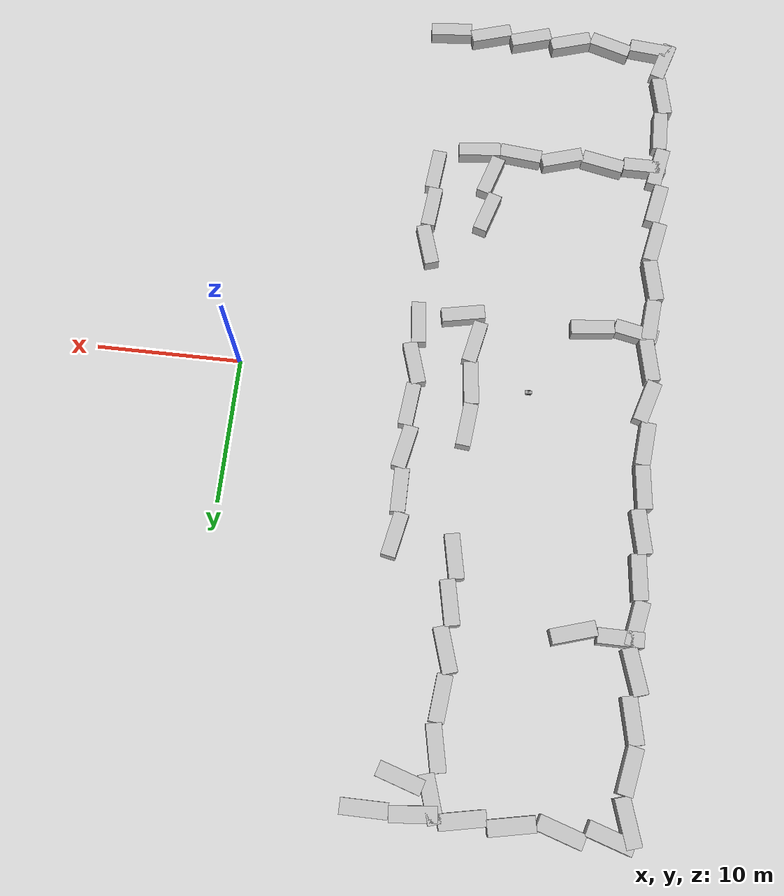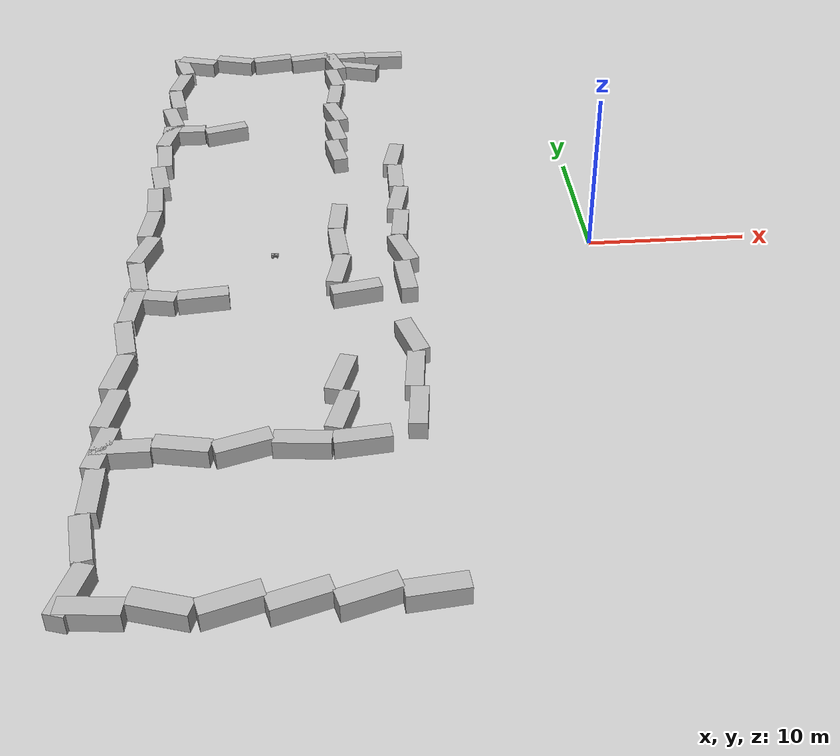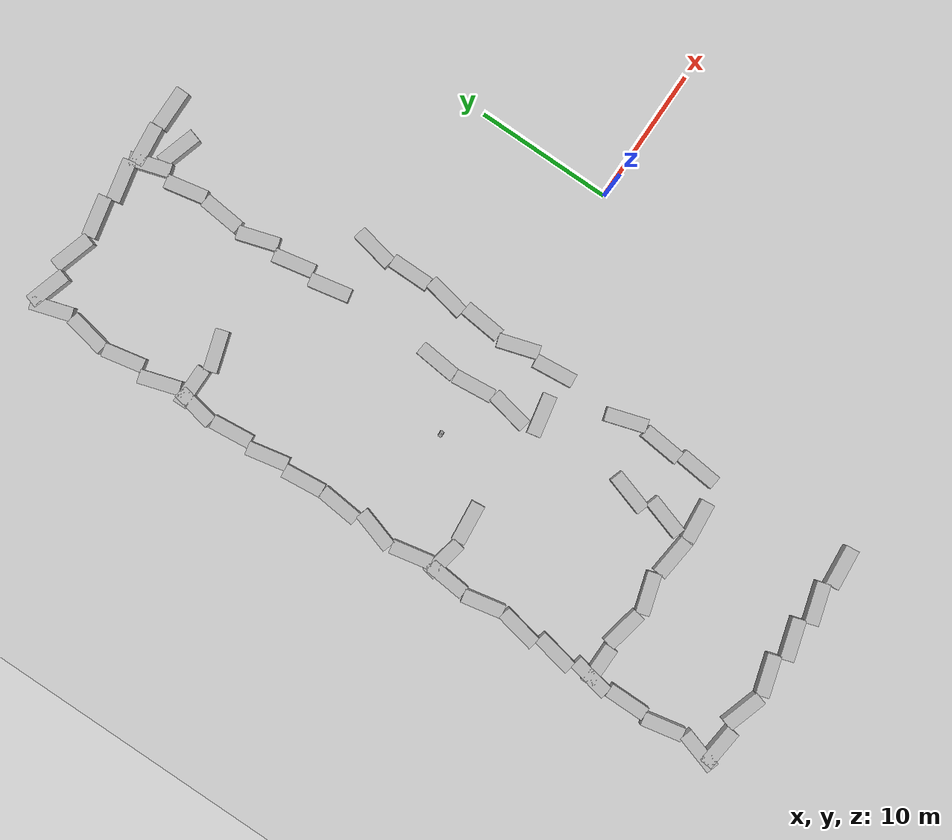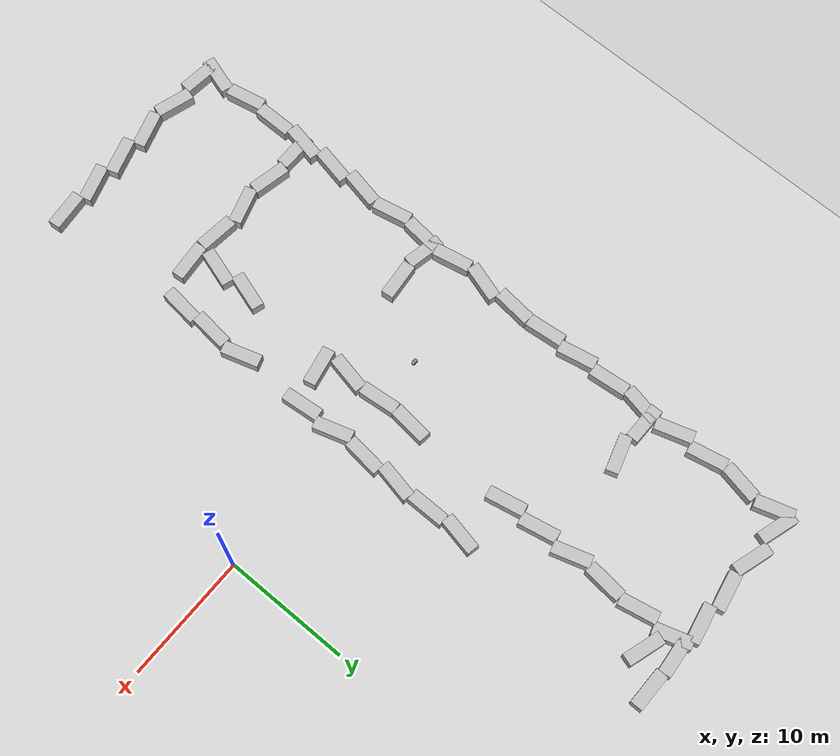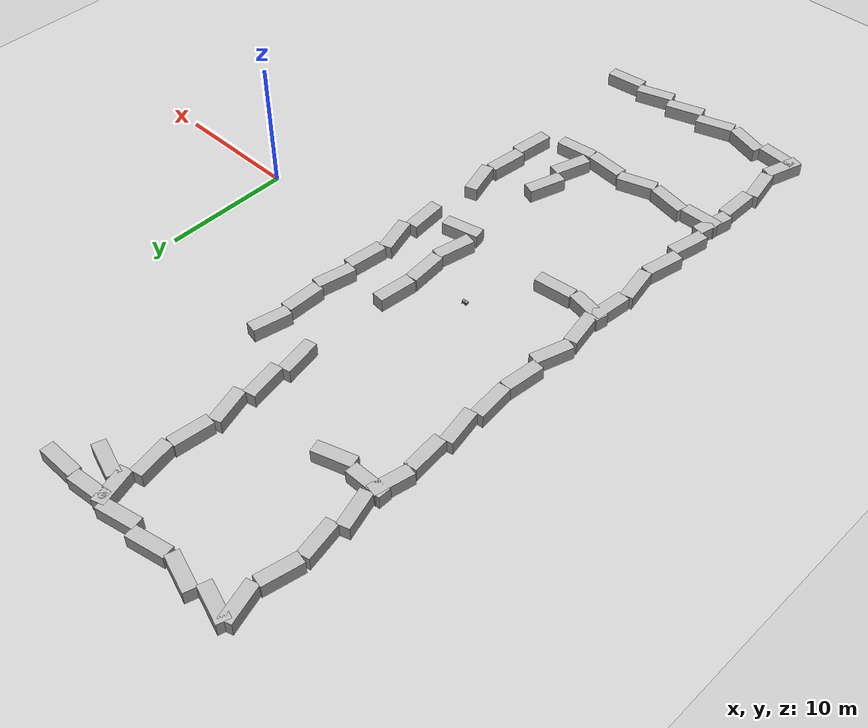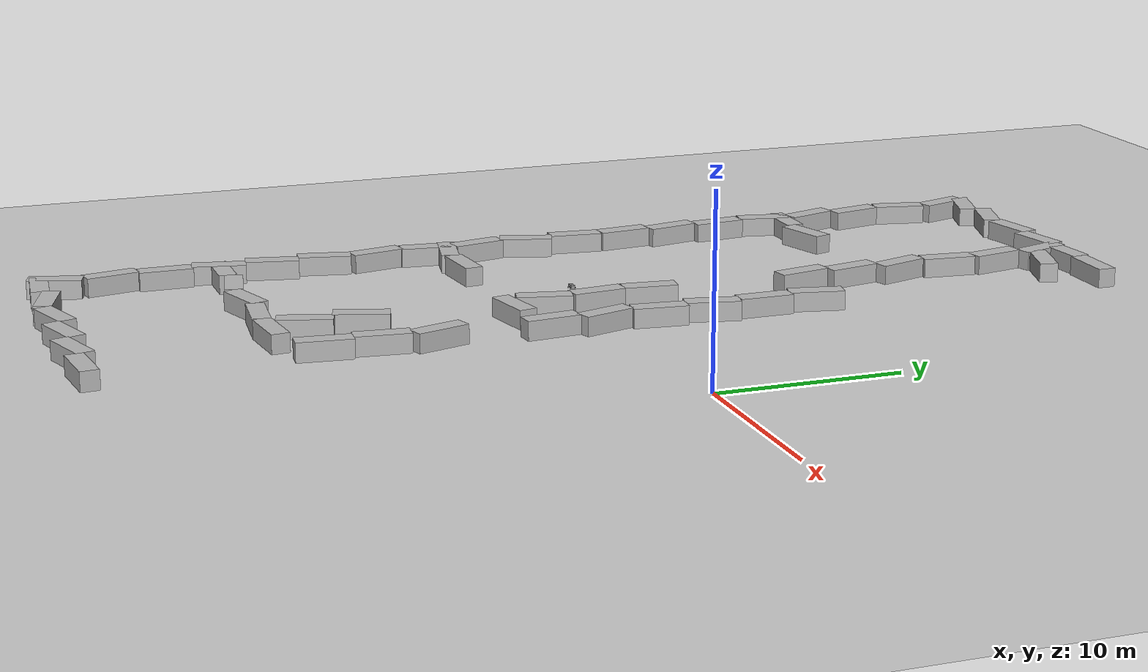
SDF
<sdf version="1.6">
 <world name="default">
  <model name="ground_plane">
   <static>1</static>
   <link name="link">
    <collision name="collision">
     <geometry><plane><normal>0 0 1</normal><size>100 100</size></plane></geometry>
     <surface>
      <contact><collide_bitmask>65535</collide_bitmask></contact>
      <friction><ode><mu>100</mu><mu2>50</mu2></ode></friction>
     </surface>
    </collision>
    <visual name="visual">
     <cast_shadows>0</cast_shadows>
     <geometry><plane><normal>0 0 1</normal><size>100 100</size></plane></geometry>
     <material>
      <script><uri>file://media/materials/scripts/gazebo.material</uri><name>Gazebo/Grey</name></script>
     </material>
    </visual>
   </link>
  </model>
  <model name="wall0">
   <static>1</static>
   <link name="chassis">
    <pose>0 0 1.5 0 -0 0</pose>
    <collision name="collision"><geometry><box><size>3 1 3</size></box></geometry></collision>
    <visual name="visual">
     <geometry><mesh><uri>model://brick_box_3x1x3/meshes/simple_box.dae</uri><scale>3 1 3</scale></mesh></geometry>
     <material>
      <script>
       <uri>model://brick_box_3x1x3/materials/scripts</uri>
       <uri>model://brick_box_3x1x3/materials/textures</uri>
       <name>BrickBox/Diffuse</name>
      </script>
     </material>
    </visual>
   </link>
   <pose>-27 -28 -2 0 0 -0.1</pose>
  </model>
  <model name="wall1">
   <static>1</static>
   <link name="chassis">
    <pose>0 0 1.5 0 -0 0</pose>
    <collision name="collision"><geometry><box><size>3 1 3</size></box></geometry></collision>
    <visual name="visual">
     <geometry><mesh><uri>model://brick_box_3x1x3/meshes/simple_box.dae</uri><scale>3 1 3</scale></mesh></geometry>
     <material>
      <script>
       <uri>model://brick_box_3x1x3/materials/scripts</uri>
       <uri>model://brick_box_3x1x3/materials/textures</uri>
       <name>BrickBox/Diffuse</name>
      </script>
     </material>
    </visual>
   </link>
   <pose>-27 28 -2 0 0 -0.3</pose>
  </model>
  <model name="wall2">
   <static>1</static>
   <link name="chassis">
    <pose>0 0 1.5 0 -0 0</pose>
    <collision name="collision"><geometry><box><size>3 1 3</size></box></geometry></collision>
    <visual name="visual">
     <geometry><mesh><uri>model://brick_box_3x1x3/meshes/simple_box.dae</uri><scale>3 1 3</scale></mesh></geometry>
     <material>
      <script>
       <uri>model://brick_box_3x1x3/materials/scripts</uri>
       <uri>model://brick_box_3x1x3/materials/textures</uri>
       <name>BrickBox/Diffuse</name>
      </script>
     </material>
    </visual>
   </link>
   <pose>-28 -27 -2 0 -0 1.2708</pose>
  </model>
  <model name="wall4">
   <static>1</static>
   <link name="chassis">
    <pose>0 0 1.5 0 -0 0</pose>
    <collision name="collision"><geometry><box><size>3 1 3</size></box></geometry></collision>
    <visual name="visual">
     <geometry><mesh><uri>model://brick_box_3x1x3/meshes/simple_box.dae</uri><scale>3 1 3</scale></mesh></geometry>
     <material>
      <script>
       <uri>model://brick_box_3x1x3/materials/scripts</uri>
       <uri>model://brick_box_3x1x3/materials/textures</uri>
       <name>BrickBox/Diffuse</name>
      </script>
     </material>
    </visual>
   </link>
   <pose>-24 -28 -2 0 0 -0.3</pose>
  </model>
  <model name="wall5">
   <static>1</static>
   <link name="chassis">
    <pose>0 0 1.5 0 -0 0</pose>
    <collision name="collision"><geometry><box><size>3 1 3</size></box></geometry></collision>
    <visual name="visual">
     <geometry><mesh><uri>model://brick_box_3x1x3/meshes/simple_box.dae</uri><scale>3 1 3</scale></mesh></geometry>
     <material>
      <script>
       <uri>model://brick_box_3x1x3/materials/scripts</uri>
       <uri>model://brick_box_3x1x3/materials/textures</uri>
       <name>BrickBox/Diffuse</name>
      </script>
     </material>
    </visual>
   </link>
   <pose>-24 28 -2 0 0 -0.3</pose>
  </model>
  <model name="wall6">
   <static>1</static>
   <link name="chassis">
    <pose>0 0 1.5 0 -0 0</pose>
    <collision name="collision"><geometry><box><size>3 1 3</size></box></geometry></collision>
    <visual name="visual">
     <geometry><mesh><uri>model://brick_box_3x1x3/meshes/simple_box.dae</uri><scale>3 1 3</scale></mesh></geometry>
     <material>
      <script>
       <uri>model://brick_box_3x1x3/materials/scripts</uri>
       <uri>model://brick_box_3x1x3/materials/textures</uri>
       <name>BrickBox/Diffuse</name>
      </script>
     </material>
    </visual>
   </link>
   <pose>-28 -24 -2 0 -0 1.7708</pose>
  </model>
  <model name="wall8">
   <static>1</static>
   <link name="chassis">
    <pose>0 0 1.5 0 -0 0</pose>
    <collision name="collision"><geometry><box><size>3 1 3</size></box></geometry></collision>
    <visual name="visual">
     <geometry><mesh><uri>model://brick_box_3x1x3/meshes/simple_box.dae</uri><scale>3 1 3</scale></mesh></geometry>
     <material>
      <script>
       <uri>model://brick_box_3x1x3/materials/scripts</uri>
       <uri>model://brick_box_3x1x3/materials/textures</uri>
       <name>BrickBox/Diffuse</name>
      </script>
     </material>
    </visual>
   </link>
   <pose>-21 -28 -2 0 -0 0.3</pose>
  </model>
  <model name="wall9">
   <static>1</static>
   <link name="chassis">
    <pose>0 0 1.5 0 -0 0</pose>
    <collision name="collision"><geometry><box><size>3 1 3</size></box></geometry></collision>
    <visual name="visual">
     <geometry><mesh><uri>model://brick_box_3x1x3/meshes/simple_box.dae</uri><scale>3 1 3</scale></mesh></geometry>
     <material>
      <script>
       <uri>model://brick_box_3x1x3/materials/scripts</uri>
       <uri>model://brick_box_3x1x3/materials/textures</uri>
       <name>BrickBox/Diffuse</name>
      </script>
     </material>
    </visual>
   </link>
   <pose>-21 28 -2 0 -0 0.2</pose>
  </model>
  <model name="wall10">
   <static>1</static>
   <link name="chassis">
    <pose>0 0 1.5 0 -0 0</pose>
    <collision name="collision"><geometry><box><size>3 1 3</size></box></geometry></collision>
    <visual name="visual">
     <geometry><mesh><uri>model://brick_box_3x1x3/meshes/simple_box.dae</uri><scale>3 1 3</scale></mesh></geometry>
     <material>
      <script>
       <uri>model://brick_box_3x1x3/materials/scripts</uri>
       <uri>model://brick_box_3x1x3/materials/textures</uri>
       <name>BrickBox/Diffuse</name>
      </script>
     </material>
    </visual>
   </link>
   <pose>-28 -21 -2 0 -0 1.5708</pose>
  </model>
  <model name="wall12">
   <static>1</static>
   <link name="chassis">
    <pose>0 0 1.5 0 -0 0</pose>
    <collision name="collision"><geometry><box><size>3 1 3</size></box></geometry></collision>
    <visual name="visual">
     <geometry><mesh><uri>model://brick_box_3x1x3/meshes/simple_box.dae</uri><scale>3 1 3</scale></mesh></geometry>
     <material>
      <script>
       <uri>model://brick_box_3x1x3/materials/scripts</uri>
       <uri>model://brick_box_3x1x3/materials/textures</uri>
       <name>BrickBox/Diffuse</name>
      </script>
     </material>
    </visual>
   </link>
   <pose>-18 -28 -2 0 -0 0.3</pose>
  </model>
  <model name="wall13">
   <static>1</static>
   <link name="chassis">
    <pose>0 0 1.5 0 -0 0</pose>
    <collision name="collision"><geometry><box><size>3 1 3</size></box></geometry></collision>
    <visual name="visual">
     <geometry><mesh><uri>model://brick_box_3x1x3/meshes/simple_box.dae</uri><scale>3 1 3</scale></mesh></geometry>
     <material>
      <script>
       <uri>model://brick_box_3x1x3/materials/scripts</uri>
       <uri>model://brick_box_3x1x3/materials/textures</uri>
       <name>BrickBox/Diffuse</name>
      </script>
     </material>
    </visual>
   </link>
   <pose>-18 28 -2 0 -0 0.2</pose>
  </model>
  <model name="wall14">
   <static>1</static>
   <link name="chassis">
    <pose>0 0 1.5 0 -0 0</pose>
    <collision name="collision"><geometry><box><size>3 1 3</size></box></geometry></collision>
    <visual name="visual">
     <geometry><mesh><uri>model://brick_box_3x1x3/meshes/simple_box.dae</uri><scale>3 1 3</scale></mesh></geometry>
     <material>
      <script>
       <uri>model://brick_box_3x1x3/materials/scripts</uri>
       <uri>model://brick_box_3x1x3/materials/textures</uri>
       <name>BrickBox/Diffuse</name>
      </script>
     </material>
    </visual>
   </link>
   <pose>-28 -18 -2 0 -0 1.3708</pose>
  </model>
  <model name="wall16">
   <static>1</static>
   <link name="chassis">
    <pose>0 0 1.5 0 -0 0</pose>
    <collision name="collision"><geometry><box><size>3 1 3</size></box></geometry></collision>
    <visual name="visual">
     <geometry><mesh><uri>model://brick_box_3x1x3/meshes/simple_box.dae</uri><scale>3 1 3</scale></mesh></geometry>
     <material>
      <script>
       <uri>model://brick_box_3x1x3/materials/scripts</uri>
       <uri>model://brick_box_3x1x3/materials/textures</uri>
       <name>BrickBox/Diffuse</name>
      </script>
     </material>
    </visual>
   </link>
   <pose>-15 -28 -2 0 -0 0.3</pose>
  </model>
  <model name="wall17">
   <static>1</static>
   <link name="chassis">
    <pose>0 0 1.5 0 -0 0</pose>
    <collision name="collision"><geometry><box><size>3 1 3</size></box></geometry></collision>
    <visual name="visual">
     <geometry><mesh><uri>model://brick_box_3x1x3/meshes/simple_box.dae</uri><scale>3 1 3</scale></mesh></geometry>
     <material>
      <script>
       <uri>model://brick_box_3x1x3/materials/scripts</uri>
       <uri>model://brick_box_3x1x3/materials/textures</uri>
       <name>BrickBox/Diffuse</name>
      </script>
     </material>
    </visual>
   </link>
   <pose>-15 28 -2 0 -0 0.1</pose>
  </model>
  <model name="wall18">
   <static>1</static>
   <link name="chassis">
    <pose>0 0 1.5 0 -0 0</pose>
    <collision name="collision"><geometry><box><size>3 1 3</size></box></geometry></collision>
    <visual name="visual">
     <geometry><mesh><uri>model://brick_box_3x1x3/meshes/simple_box.dae</uri><scale>3 1 3</scale></mesh></geometry>
     <material>
      <script>
       <uri>model://brick_box_3x1x3/materials/scripts</uri>
       <uri>model://brick_box_3x1x3/materials/textures</uri>
       <name>BrickBox/Diffuse</name>
      </script>
     </material>
    </visual>
   </link>
   <pose>-28 -15 -2 0 -0 1.3708</pose>
  </model>
  <model name="wall20">
   <static>1</static>
   <link name="chassis">
    <pose>0 0 1.5 0 -0 0</pose>
    <collision name="collision"><geometry><box><size>3 1 3</size></box></geometry></collision>
    <visual name="visual">
     <geometry><mesh><uri>model://brick_box_3x1x3/meshes/simple_box.dae</uri><scale>3 1 3</scale></mesh></geometry>
     <material>
      <script>
       <uri>model://brick_box_3x1x3/materials/scripts</uri>
       <uri>model://brick_box_3x1x3/materials/textures</uri>
       <name>BrickBox/Diffuse</name>
      </script>
     </material>
    </visual>
   </link>
   <pose>-12 -28 -2 0 -0 0.1</pose>
  </model>
  <model name="wall21">
   <static>1</static>
   <link name="chassis">
    <pose>0 0 1.5 0 -0 0</pose>
    <collision name="collision"><geometry><box><size>3 1 3</size></box></geometry></collision>
    <visual name="visual">
     <geometry><mesh><uri>model://brick_box_3x1x3/meshes/simple_box.dae</uri><scale>3 1 3</scale></mesh></geometry>
     <material>
      <script>
       <uri>model://brick_box_3x1x3/materials/scripts</uri>
       <uri>model://brick_box_3x1x3/materials/textures</uri>
       <name>BrickBox/Diffuse</name>
      </script>
     </material>
    </visual>
   </link>
   <pose>-12 28 -2 0 -0 0</pose>
  </model>
  <model name="wall22">
   <static>1</static>
   <link name="chassis">
    <pose>0 0 1.5 0 -0 0</pose>
    <collision name="collision"><geometry><box><size>3 1 3</size></box></geometry></collision>
    <visual name="visual">
     <geometry><mesh><uri>model://brick_box_3x1x3/meshes/simple_box.dae</uri><scale>3 1 3</scale></mesh></geometry>
     <material>
      <script>
       <uri>model://brick_box_3x1x3/materials/scripts</uri>
       <uri>model://brick_box_3x1x3/materials/textures</uri>
       <name>BrickBox/Diffuse</name>
      </script>
     </material>
    </visual>
   </link>
   <pose>-28 -12 -2 0 -0 1.3708</pose>
  </model>
  <model name="wall26">
   <static>1</static>
   <link name="chassis">
    <pose>0 0 1.5 0 -0 0</pose>
    <collision name="collision"><geometry><box><size>3 1 3</size></box></geometry></collision>
    <visual name="visual">
     <geometry><mesh><uri>model://brick_box_3x1x3/meshes/simple_box.dae</uri><scale>3 1 3</scale></mesh></geometry>
     <material>
      <script>
       <uri>model://brick_box_3x1x3/materials/scripts</uri>
       <uri>model://brick_box_3x1x3/materials/textures</uri>
       <name>BrickBox/Diffuse</name>
      </script>
     </material>
    </visual>
   </link>
   <pose>-28 -9 -2 0 -0 1.7708</pose>
  </model>
  <model name="wall30">
   <static>1</static>
   <link name="chassis">
    <pose>0 0 1.5 0 -0 0</pose>
    <collision name="collision"><geometry><box><size>3 1 3</size></box></geometry></collision>
    <visual name="visual">
     <geometry><mesh><uri>model://brick_box_3x1x3/meshes/simple_box.dae</uri><scale>3 1 3</scale></mesh></geometry>
     <material>
      <script>
       <uri>model://brick_box_3x1x3/materials/scripts</uri>
       <uri>model://brick_box_3x1x3/materials/textures</uri>
       <name>BrickBox/Diffuse</name>
      </script>
     </material>
    </visual>
   </link>
   <pose>-28 -6 -2 0 -0 1.4708</pose>
  </model>
  <model name="wall34">
   <static>1</static>
   <link name="chassis">
    <pose>0 0 1.5 0 -0 0</pose>
    <collision name="collision"><geometry><box><size>3 1 3</size></box></geometry></collision>
    <visual name="visual">
     <geometry><mesh><uri>model://brick_box_3x1x3/meshes/simple_box.dae</uri><scale>3 1 3</scale></mesh></geometry>
     <material>
      <script>
       <uri>model://brick_box_3x1x3/materials/scripts</uri>
       <uri>model://brick_box_3x1x3/materials/textures</uri>
       <name>BrickBox/Diffuse</name>
      </script>
     </material>
    </visual>
   </link>
   <pose>-28 -3 -2 0 -0 1.7708</pose>
  </model>
  <model name="wall38">
   <static>1</static>
   <link name="chassis">
    <pose>0 0 1.5 0 -0 0</pose>
    <collision name="collision"><geometry><box><size>3 1 3</size></box></geometry></collision>
    <visual name="visual">
     <geometry><mesh><uri>model://brick_box_3x1x3/meshes/simple_box.dae</uri><scale>3 1 3</scale></mesh></geometry>
     <material>
      <script>
       <uri>model://brick_box_3x1x3/materials/scripts</uri>
       <uri>model://brick_box_3x1x3/materials/textures</uri>
       <name>BrickBox/Diffuse</name>
      </script>
     </material>
    </visual>
   </link>
   <pose>-28 0 -2 0 -0 1.2708</pose>
  </model>
  <model name="wall42">
   <static>1</static>
   <link name="chassis">
    <pose>0 0 1.5 0 -0 0</pose>
    <collision name="collision"><geometry><box><size>3 1 3</size></box></geometry></collision>
    <visual name="visual">
     <geometry><mesh><uri>model://brick_box_3x1x3/meshes/simple_box.dae</uri><scale>3 1 3</scale></mesh></geometry>
     <material>
      <script>
       <uri>model://brick_box_3x1x3/materials/scripts</uri>
       <uri>model://brick_box_3x1x3/materials/textures</uri>
       <name>BrickBox/Diffuse</name>
      </script>
     </material>
    </visual>
   </link>
   <pose>-28 3 -2 0 -0 1.4708</pose>
  </model>
  <model name="wall46">
   <static>1</static>
   <link name="chassis">
    <pose>0 0 1.5 0 -0 0</pose>
    <collision name="collision"><geometry><box><size>3 1 3</size></box></geometry></collision>
    <visual name="visual">
     <geometry><mesh><uri>model://brick_box_3x1x3/meshes/simple_box.dae</uri><scale>3 1 3</scale></mesh></geometry>
     <material>
      <script>
       <uri>model://brick_box_3x1x3/materials/scripts</uri>
       <uri>model://brick_box_3x1x3/materials/textures</uri>
       <name>BrickBox/Diffuse</name>
      </script>
     </material>
    </visual>
   </link>
   <pose>-28 6 -2 0 -0 1.6708</pose>
  </model>
  <model name="wall50">
   <static>1</static>
   <link name="chassis">
    <pose>0 0 1.5 0 -0 0</pose>
    <collision name="collision"><geometry><box><size>3 1 3</size></box></geometry></collision>
    <visual name="visual">
     <geometry><mesh><uri>model://brick_box_3x1x3/meshes/simple_box.dae</uri><scale>3 1 3</scale></mesh></geometry>
     <material>
      <script>
       <uri>model://brick_box_3x1x3/materials/scripts</uri>
       <uri>model://brick_box_3x1x3/materials/textures</uri>
       <name>BrickBox/Diffuse</name>
      </script>
     </material>
    </visual>
   </link>
   <pose>-28 9 -2 0 -0 1.7708</pose>
  </model>
  <model name="wall54">
   <static>1</static>
   <link name="chassis">
    <pose>0 0 1.5 0 -0 0</pose>
    <collision name="collision"><geometry><box><size>3 1 3</size></box></geometry></collision>
    <visual name="visual">
     <geometry><mesh><uri>model://brick_box_3x1x3/meshes/simple_box.dae</uri><scale>3 1 3</scale></mesh></geometry>
     <material>
      <script>
       <uri>model://brick_box_3x1x3/materials/scripts</uri>
       <uri>model://brick_box_3x1x3/materials/textures</uri>
       <name>BrickBox/Diffuse</name>
      </script>
     </material>
    </visual>
   </link>
   <pose>-28 12 -2 0 -0 1.6708</pose>
  </model>
  <model name="wall58">
   <static>1</static>
   <link name="chassis">
    <pose>0 0 1.5 0 -0 0</pose>
    <collision name="collision"><geometry><box><size>3 1 3</size></box></geometry></collision>
    <visual name="visual">
     <geometry><mesh><uri>model://brick_box_3x1x3/meshes/simple_box.dae</uri><scale>3 1 3</scale></mesh></geometry>
     <material>
      <script>
       <uri>model://brick_box_3x1x3/materials/scripts</uri>
       <uri>model://brick_box_3x1x3/materials/textures</uri>
       <name>BrickBox/Diffuse</name>
      </script>
     </material>
    </visual>
   </link>
   <pose>-28 15 -2 0 -0 1.3708</pose>
  </model>
  <model name="wall62">
   <static>1</static>
   <link name="chassis">
    <pose>0 0 1.5 0 -0 0</pose>
    <collision name="collision"><geometry><box><size>3 1 3</size></box></geometry></collision>
    <visual name="visual">
     <geometry><mesh><uri>model://brick_box_3x1x3/meshes/simple_box.dae</uri><scale>3 1 3</scale></mesh></geometry>
     <material>
      <script>
       <uri>model://brick_box_3x1x3/materials/scripts</uri>
       <uri>model://brick_box_3x1x3/materials/textures</uri>
       <name>BrickBox/Diffuse</name>
      </script>
     </material>
    </visual>
   </link>
   <pose>-28 18 -2 0 -0 1.8708</pose>
  </model>
  <model name="wall66">
   <static>1</static>
   <link name="chassis">
    <pose>0 0 1.5 0 -0 0</pose>
    <collision name="collision"><geometry><box><size>3 1 3</size></box></geometry></collision>
    <visual name="visual">
     <geometry><mesh><uri>model://brick_box_3x1x3/meshes/simple_box.dae</uri><scale>3 1 3</scale></mesh></geometry>
     <material>
      <script>
       <uri>model://brick_box_3x1x3/materials/scripts</uri>
       <uri>model://brick_box_3x1x3/materials/textures</uri>
       <name>BrickBox/Diffuse</name>
      </script>
     </material>
    </visual>
   </link>
   <pose>-28 21 -2 0 -0 1.7708</pose>
  </model>
  <model name="wall70">
   <static>1</static>
   <link name="chassis">
    <pose>0 0 1.5 0 -0 0</pose>
    <collision name="collision"><geometry><box><size>3 1 3</size></box></geometry></collision>
    <visual name="visual">
     <geometry><mesh><uri>model://brick_box_3x1x3/meshes/simple_box.dae</uri><scale>3 1 3</scale></mesh></geometry>
     <material>
      <script>
       <uri>model://brick_box_3x1x3/materials/scripts</uri>
       <uri>model://brick_box_3x1x3/materials/textures</uri>
       <name>BrickBox/Diffuse</name>
      </script>
     </material>
    </visual>
   </link>
   <pose>-28 24 -2 0 -0 1.3708</pose>
  </model>
  <model name="wall74">
   <static>1</static>
   <link name="chassis">
    <pose>0 0 1.5 0 -0 0</pose>
    <collision name="collision"><geometry><box><size>3 1 3</size></box></geometry></collision>
    <visual name="visual">
     <geometry><mesh><uri>model://brick_box_3x1x3/meshes/simple_box.dae</uri><scale>3 1 3</scale></mesh></geometry>
     <material>
      <script>
       <uri>model://brick_box_3x1x3/materials/scripts</uri>
       <uri>model://brick_box_3x1x3/materials/textures</uri>
       <name>BrickBox/Diffuse</name>
      </script>
     </material>
    </visual>
   </link>
   <pose>-28 27 -2 0 -0 1.8708</pose>
  </model>
  <model name="wall93">
   <static>1</static>
   <link name="chassis">
    <pose>0 0 1.5 0 -0 0</pose>
    <collision name="collision"><geometry><box><size>3 1 3</size></box></geometry></collision>
    <visual name="visual">
     <geometry><mesh><uri>model://brick_box_3x1x3/meshes/simple_box.dae</uri><scale>3 1 3</scale></mesh></geometry>
     <material>
      <script>
       <uri>model://brick_box_3x1x3/materials/scripts</uri>
       <uri>model://brick_box_3x1x3/materials/textures</uri>
       <name>BrickBox/Diffuse</name>
      </script>
     </material>
    </visual>
   </link>
   <pose>-27 -18 -2 0 -0 0</pose>
  </model>
  <model name="wall94">
   <static>1</static>
   <link name="chassis">
    <pose>0 0 1.5 0 -0 0</pose>
    <collision name="collision"><geometry><box><size>3 1 3</size></box></geometry></collision>
    <visual name="visual">
     <geometry><mesh><uri>model://brick_box_3x1x3/meshes/simple_box.dae</uri><scale>3 1 3</scale></mesh></geometry>
     <material>
      <script>
       <uri>model://brick_box_3x1x3/materials/scripts</uri>
       <uri>model://brick_box_3x1x3/materials/textures</uri>
       <name>BrickBox/Diffuse</name>
      </script>
     </material>
    </visual>
   </link>
   <pose>-24 -18 -2 0 0 -0.2</pose>
  </model>
  <model name="wall95">
   <static>1</static>
   <link name="chassis">
    <pose>0 0 1.5 0 -0 0</pose>
    <collision name="collision"><geometry><box><size>3 1 3</size></box></geometry></collision>
    <visual name="visual">
     <geometry><mesh><uri>model://brick_box_3x1x3/meshes/simple_box.dae</uri><scale>3 1 3</scale></mesh></geometry>
     <material>
      <script>
       <uri>model://brick_box_3x1x3/materials/scripts</uri>
       <uri>model://brick_box_3x1x3/materials/textures</uri>
       <name>BrickBox/Diffuse</name>
      </script>
     </material>
    </visual>
   </link>
   <pose>-21 -18 -2 0 -0 0.3</pose>
  </model>
  <model name="wall96">
   <static>1</static>
   <link name="chassis">
    <pose>0 0 1.5 0 -0 0</pose>
    <collision name="collision"><geometry><box><size>3 1 3</size></box></geometry></collision>
    <visual name="visual">
     <geometry><mesh><uri>model://brick_box_3x1x3/meshes/simple_box.dae</uri><scale>3 1 3</scale></mesh></geometry>
     <material>
      <script>
       <uri>model://brick_box_3x1x3/materials/scripts</uri>
       <uri>model://brick_box_3x1x3/materials/textures</uri>
       <name>BrickBox/Diffuse</name>
      </script>
     </material>
    </visual>
   </link>
   <pose>-18 -18 -2 0 0 -0.1</pose>
  </model>
  <model name="wall97">
   <static>1</static>
   <link name="chassis">
    <pose>0 0 1.5 0 -0 0</pose>
    <collision name="collision"><geometry><box><size>3 1 3</size></box></geometry></collision>
    <visual name="visual">
     <geometry><mesh><uri>model://brick_box_3x1x3/meshes/simple_box.dae</uri><scale>3 1 3</scale></mesh></geometry>
     <material>
      <script>
       <uri>model://brick_box_3x1x3/materials/scripts</uri>
       <uri>model://brick_box_3x1x3/materials/textures</uri>
       <name>BrickBox/Diffuse</name>
      </script>
     </material>
    </visual>
   </link>
   <pose>-15 -18 -2 0 -0 0.1</pose>
  </model>
  <model name="wall106">
   <static>1</static>
   <link name="chassis">
    <pose>0 0 1.5 0 -0 0</pose>
    <collision name="collision"><geometry><box><size>3 1 3</size></box></geometry></collision>
    <visual name="visual">
     <geometry><mesh><uri>model://brick_box_3x1x3/meshes/simple_box.dae</uri><scale>3 1 3</scale></mesh></geometry>
     <material>
      <script>
       <uri>model://brick_box_3x1x3/materials/scripts</uri>
       <uri>model://brick_box_3x1x3/materials/textures</uri>
       <name>BrickBox/Diffuse</name>
      </script>
     </material>
    </visual>
   </link>
   <pose>-12 -16 -2 0 -0 1.4708</pose>
  </model>
  <model name="wall107">
   <static>1</static>
   <link name="chassis">
    <pose>0 0 1.5 0 -0 0</pose>
    <collision name="collision"><geometry><box><size>3 1 3</size></box></geometry></collision>
    <visual name="visual">
     <geometry><mesh><uri>model://brick_box_3x1x3/meshes/simple_box.dae</uri><scale>3 1 3</scale></mesh></geometry>
     <material>
      <script>
       <uri>model://brick_box_3x1x3/materials/scripts</uri>
       <uri>model://brick_box_3x1x3/materials/textures</uri>
       <name>BrickBox/Diffuse</name>
      </script>
     </material>
    </visual>
   </link>
   <pose>-12 -13 -2 0 -0 1.4708</pose>
  </model>
  <model name="wall108">
   <static>1</static>
   <link name="chassis">
    <pose>0 0 1.5 0 -0 0</pose>
    <collision name="collision"><geometry><box><size>3 1 3</size></box></geometry></collision>
    <visual name="visual">
     <geometry><mesh><uri>model://brick_box_3x1x3/meshes/simple_box.dae</uri><scale>3 1 3</scale></mesh></geometry>
     <material>
      <script>
       <uri>model://brick_box_3x1x3/materials/scripts</uri>
       <uri>model://brick_box_3x1x3/materials/textures</uri>
       <name>BrickBox/Diffuse</name>
      </script>
     </material>
    </visual>
   </link>
   <pose>-12 -10 -2 0 -0 1.8708</pose>
  </model>
  <model name="wall109">
   <static>1</static>
   <link name="chassis">
    <pose>0 0 1.5 0 -0 0</pose>
    <collision name="collision"><geometry><box><size>3 1 3</size></box></geometry></collision>
    <visual name="visual">
     <geometry><mesh><uri>model://brick_box_3x1x3/meshes/simple_box.dae</uri><scale>3 1 3</scale></mesh></geometry>
     <material>
      <script>
       <uri>model://brick_box_3x1x3/materials/scripts</uri>
       <uri>model://brick_box_3x1x3/materials/textures</uri>
       <name>BrickBox/Diffuse</name>
      </script>
     </material>
    </visual>
   </link>
   <pose>-12 -4 -2 0 -0 1.6708</pose>
  </model>
  <model name="wall110">
   <static>1</static>
   <link name="chassis">
    <pose>0 0 1.5 0 -0 0</pose>
    <collision name="collision"><geometry><box><size>3 1 3</size></box></geometry></collision>
    <visual name="visual">
     <geometry><mesh><uri>model://brick_box_3x1x3/meshes/simple_box.dae</uri><scale>3 1 3</scale></mesh></geometry>
     <material>
      <script>
       <uri>model://brick_box_3x1x3/materials/scripts</uri>
       <uri>model://brick_box_3x1x3/materials/textures</uri>
       <name>BrickBox/Diffuse</name>
      </script>
     </material>
    </visual>
   </link>
   <pose>-12 -1 -2 0 -0 1.8708</pose>
  </model>
  <model name="wall111">
   <static>1</static>
   <link name="chassis">
    <pose>0 0 1.5 0 -0 0</pose>
    <collision name="collision"><geometry><box><size>3 1 3</size></box></geometry></collision>
    <visual name="visual">
     <geometry><mesh><uri>model://brick_box_3x1x3/meshes/simple_box.dae</uri><scale>3 1 3</scale></mesh></geometry>
     <material>
      <script>
       <uri>model://brick_box_3x1x3/materials/scripts</uri>
       <uri>model://brick_box_3x1x3/materials/textures</uri>
       <name>BrickBox/Diffuse</name>
      </script>
     </material>
    </visual>
   </link>
   <pose>-12 2 -2 0 -0 1.4708</pose>
  </model>
  <model name="wall112">
   <static>1</static>
   <link name="chassis">
    <pose>0 0 1.5 0 -0 0</pose>
    <collision name="collision"><geometry><box><size>3 1 3</size></box></geometry></collision>
    <visual name="visual">
     <geometry><mesh><uri>model://brick_box_3x1x3/meshes/simple_box.dae</uri><scale>3 1 3</scale></mesh></geometry>
     <material>
      <script>
       <uri>model://brick_box_3x1x3/materials/scripts</uri>
       <uri>model://brick_box_3x1x3/materials/textures</uri>
       <name>BrickBox/Diffuse</name>
      </script>
     </material>
    </visual>
   </link>
   <pose>-12 5 -2 0 -0 1.3708</pose>
  </model>
  <model name="wall113">
   <static>1</static>
   <link name="chassis">
    <pose>0 0 1.5 0 -0 0</pose>
    <collision name="collision"><geometry><box><size>3 1 3</size></box></geometry></collision>
    <visual name="visual">
     <geometry><mesh><uri>model://brick_box_3x1x3/meshes/simple_box.dae</uri><scale>3 1 3</scale></mesh></geometry>
     <material>
      <script>
       <uri>model://brick_box_3x1x3/materials/scripts</uri>
       <uri>model://brick_box_3x1x3/materials/textures</uri>
       <name>BrickBox/Diffuse</name>
      </script>
     </material>
    </visual>
   </link>
   <pose>-12 8 -2 0 -0 1.5708</pose>
  </model>
  <model name="wall114">
   <static>1</static>
   <link name="chassis">
    <pose>0 0 1.5 0 -0 0</pose>
    <collision name="collision"><geometry><box><size>3 1 3</size></box></geometry></collision>
    <visual name="visual">
     <geometry><mesh><uri>model://brick_box_3x1x3/meshes/simple_box.dae</uri><scale>3 1 3</scale></mesh></geometry>
     <material>
      <script>
       <uri>model://brick_box_3x1x3/materials/scripts</uri>
       <uri>model://brick_box_3x1x3/materials/textures</uri>
       <name>BrickBox/Diffuse</name>
      </script>
     </material>
    </visual>
   </link>
   <pose>-12 11 -2 0 -0 1.3708</pose>
  </model>
  <model name="wall121">
   <static>1</static>
   <link name="chassis">
    <pose>0 0 1.5 0 -0 0</pose>
    <collision name="collision"><geometry><box><size>3 1 3</size></box></geometry></collision>
    <visual name="visual">
     <geometry><mesh><uri>model://brick_box_3x1x3/meshes/simple_box.dae</uri><scale>3 1 3</scale></mesh></geometry>
     <material>
      <script>
       <uri>model://brick_box_3x1x3/materials/scripts</uri>
       <uri>model://brick_box_3x1x3/materials/textures</uri>
       <name>BrickBox/Diffuse</name>
      </script>
     </material>
    </visual>
   </link>
   <pose>-27 -5 -2 0 0 -0.2</pose>
  </model>
  <model name="wall122">
   <static>1</static>
   <link name="chassis">
    <pose>0 0 1.5 0 -0 0</pose>
    <collision name="collision"><geometry><box><size>3 1 3</size></box></geometry></collision>
    <visual name="visual">
     <geometry><mesh><uri>model://brick_box_3x1x3/meshes/simple_box.dae</uri><scale>3 1 3</scale></mesh></geometry>
     <material>
      <script>
       <uri>model://brick_box_3x1x3/materials/scripts</uri>
       <uri>model://brick_box_3x1x3/materials/textures</uri>
       <name>BrickBox/Diffuse</name>
      </script>
     </material>
    </visual>
   </link>
   <pose>-24 -5 -2 0 -0 0.1</pose>
  </model>
  <model name="wall123">
   <static>1</static>
   <link name="chassis">
    <pose>0 0 1.5 0 -0 0</pose>
    <collision name="collision"><geometry><box><size>3 1 3</size></box></geometry></collision>
    <visual name="visual">
     <geometry><mesh><uri>model://brick_box_3x1x3/meshes/simple_box.dae</uri><scale>3 1 3</scale></mesh></geometry>
     <material>
      <script>
       <uri>model://brick_box_3x1x3/materials/scripts</uri>
       <uri>model://brick_box_3x1x3/materials/textures</uri>
       <name>BrickBox/Diffuse</name>
      </script>
     </material>
    </visual>
   </link>
   <pose>-15 -5 -2 0 -0 0.2</pose>
  </model>
  <model name="wall125">
   <static>1</static>
   <link name="chassis">
    <pose>0 0 1.5 0 -0 0</pose>
    <collision name="collision"><geometry><box><size>3 1 3</size></box></geometry></collision>
    <visual name="visual">
     <geometry><mesh><uri>model://brick_box_3x1x3/meshes/simple_box.dae</uri><scale>3 1 3</scale></mesh></geometry>
     <material>
      <script>
       <uri>model://brick_box_3x1x3/materials/scripts</uri>
       <uri>model://brick_box_3x1x3/materials/textures</uri>
       <name>BrickBox/Diffuse</name>
      </script>
     </material>
    </visual>
   </link>
   <pose>-16 -16 -2 0 -0 1.2708</pose>
  </model>
  <model name="wall126">
   <static>1</static>
   <link name="chassis">
    <pose>0 0 1.5 0 -0 0</pose>
    <collision name="collision"><geometry><box><size>3 1 3</size></box></geometry></collision>
    <visual name="visual">
     <geometry><mesh><uri>model://brick_box_3x1x3/meshes/simple_box.dae</uri><scale>3 1 3</scale></mesh></geometry>
     <material>
      <script>
       <uri>model://brick_box_3x1x3/materials/scripts</uri>
       <uri>model://brick_box_3x1x3/materials/textures</uri>
       <name>BrickBox/Diffuse</name>
      </script>
     </material>
    </visual>
   </link>
   <pose>-16 -13 -2 0 -0 1.2708</pose>
  </model>
  <model name="wall127">
   <static>1</static>
   <link name="chassis">
    <pose>0 0 1.5 0 -0 0</pose>
    <collision name="collision"><geometry><box><size>3 1 3</size></box></geometry></collision>
    <visual name="visual">
     <geometry><mesh><uri>model://brick_box_3x1x3/meshes/simple_box.dae</uri><scale>3 1 3</scale></mesh></geometry>
     <material>
      <script>
       <uri>model://brick_box_3x1x3/materials/scripts</uri>
       <uri>model://brick_box_3x1x3/materials/textures</uri>
       <name>BrickBox/Diffuse</name>
      </script>
     </material>
    </visual>
   </link>
   <pose>-16 -3 -2 0 -0 1.3708</pose>
  </model>
  <model name="wall128">
   <static>1</static>
   <link name="chassis">
    <pose>0 0 1.5 0 -0 0</pose>
    <collision name="collision"><geometry><box><size>3 1 3</size></box></geometry></collision>
    <visual name="visual">
     <geometry><mesh><uri>model://brick_box_3x1x3/meshes/simple_box.dae</uri><scale>3 1 3</scale></mesh></geometry>
     <material>
      <script>
       <uri>model://brick_box_3x1x3/materials/scripts</uri>
       <uri>model://brick_box_3x1x3/materials/textures</uri>
       <name>BrickBox/Diffuse</name>
      </script>
     </material>
    </visual>
   </link>
   <pose>-16 0 -2 0 -0 1.6708</pose>
  </model>
  <model name="wall129">
   <static>1</static>
   <link name="chassis">
    <pose>0 0 1.5 0 -0 0</pose>
    <collision name="collision"><geometry><box><size>3 1 3</size></box></geometry></collision>
    <visual name="visual">
     <geometry><mesh><uri>model://brick_box_3x1x3/meshes/simple_box.dae</uri><scale>3 1 3</scale></mesh></geometry>
     <material>
      <script>
       <uri>model://brick_box_3x1x3/materials/scripts</uri>
       <uri>model://brick_box_3x1x3/materials/textures</uri>
       <name>BrickBox/Diffuse</name>
      </script>
     </material>
    </visual>
   </link>
   <pose>-16 3 -2 0 -0 1.4708</pose>
  </model>
  <model name="wall130">
   <static>1</static>
   <link name="chassis">
    <pose>0 0 1.5 0 -0 0</pose>
    <collision name="collision"><geometry><box><size>3 1 3</size></box></geometry></collision>
    <visual name="visual">
     <geometry><mesh><uri>model://brick_box_3x1x3/meshes/simple_box.dae</uri><scale>3 1 3</scale></mesh></geometry>
     <material>
      <script>
       <uri>model://brick_box_3x1x3/materials/scripts</uri>
       <uri>model://brick_box_3x1x3/materials/textures</uri>
       <name>BrickBox/Diffuse</name>
      </script>
     </material>
    </visual>
   </link>
   <pose>-16 12 -2 0 -0 1.7708</pose>
  </model>
  <model name="wall131">
   <static>1</static>
   <link name="chassis">
    <pose>0 0 1.5 0 -0 0</pose>
    <collision name="collision"><geometry><box><size>3 1 3</size></box></geometry></collision>
    <visual name="visual">
     <geometry><mesh><uri>model://brick_box_3x1x3/meshes/simple_box.dae</uri><scale>3 1 3</scale></mesh></geometry>
     <material>
      <script>
       <uri>model://brick_box_3x1x3/materials/scripts</uri>
       <uri>model://brick_box_3x1x3/materials/textures</uri>
       <name>BrickBox/Diffuse</name>
      </script>
     </material>
    </visual>
   </link>
   <pose>-16 15 -2 0 -0 1.7708</pose>
  </model>
  <model name="wall132">
   <static>1</static>
   <link name="chassis">
    <pose>0 0 1.5 0 -0 0</pose>
    <collision name="collision"><geometry><box><size>3 1 3</size></box></geometry></collision>
    <visual name="visual">
     <geometry><mesh><uri>model://brick_box_3x1x3/meshes/simple_box.dae</uri><scale>3 1 3</scale></mesh></geometry>
     <material>
      <script>
       <uri>model://brick_box_3x1x3/materials/scripts</uri>
       <uri>model://brick_box_3x1x3/materials/textures</uri>
       <name>BrickBox/Diffuse</name>
      </script>
     </material>
    </visual>
   </link>
   <pose>-16 18 -2 0 -0 1.8708</pose>
  </model>
  <model name="wall133">
   <static>1</static>
   <link name="chassis">
    <pose>0 0 1.5 0 -0 0</pose>
    <collision name="collision"><geometry><box><size>3 1 3</size></box></geometry></collision>
    <visual name="visual">
     <geometry><mesh><uri>model://brick_box_3x1x3/meshes/simple_box.dae</uri><scale>3 1 3</scale></mesh></geometry>
     <material>
      <script>
       <uri>model://brick_box_3x1x3/materials/scripts</uri>
       <uri>model://brick_box_3x1x3/materials/textures</uri>
       <name>BrickBox/Diffuse</name>
      </script>
     </material>
    </visual>
   </link>
   <pose>-16 21 -2 0 -0 1.4708</pose>
  </model>
  <model name="wall134">
   <static>1</static>
   <link name="chassis">
    <pose>0 0 1.5 0 -0 0</pose>
    <collision name="collision"><geometry><box><size>3 1 3</size></box></geometry></collision>
    <visual name="visual">
     <geometry><mesh><uri>model://brick_box_3x1x3/meshes/simple_box.dae</uri><scale>3 1 3</scale></mesh></geometry>
     <material>
      <script>
       <uri>model://brick_box_3x1x3/materials/scripts</uri>
       <uri>model://brick_box_3x1x3/materials/textures</uri>
       <name>BrickBox/Diffuse</name>
      </script>
     </material>
    </visual>
   </link>
   <pose>-16 24 -2 0 -0 1.7708</pose>
  </model>
  <model name="wall135">
   <static>1</static>
   <link name="chassis">
    <pose>0 0 1.5 0 -0 0</pose>
    <collision name="collision"><geometry><box><size>3 1 3</size></box></geometry></collision>
    <visual name="visual">
     <geometry><mesh><uri>model://brick_box_3x1x3/meshes/simple_box.dae</uri><scale>3 1 3</scale></mesh></geometry>
     <material>
      <script>
       <uri>model://brick_box_3x1x3/materials/scripts</uri>
       <uri>model://brick_box_3x1x3/materials/textures</uri>
       <name>BrickBox/Diffuse</name>
      </script>
     </material>
    </visual>
   </link>
   <pose>-16 27 -2 0 -0 1.8708</pose>
  </model>
  <model name="wall136">
   <static>1</static>
   <link name="chassis">
    <pose>0 0 1.5 0 -0 0</pose>
    <collision name="collision"><geometry><box><size>3 1 3</size></box></geometry></collision>
    <visual name="visual">
     <geometry><mesh><uri>model://brick_box_3x1x3/meshes/simple_box.dae</uri><scale>3 1 3</scale></mesh></geometry>
     <material>
      <script>
       <uri>model://brick_box_3x1x3/materials/scripts</uri>
       <uri>model://brick_box_3x1x3/materials/textures</uri>
       <name>BrickBox/Diffuse</name>
      </script>
     </material>
    </visual>
   </link>
   <pose>-27 16 -2 0 -0 0</pose>
  </model>
  <model name="wall137">
   <static>1</static>
   <link name="chassis">
    <pose>0 0 1.5 0 -0 0</pose>
    <collision name="collision"><geometry><box><size>3 1 3</size></box></geometry></collision>
    <visual name="visual">
     <geometry><mesh><uri>model://brick_box_3x1x3/meshes/simple_box.dae</uri><scale>3 1 3</scale></mesh></geometry>
     <material>
      <script>
       <uri>model://brick_box_3x1x3/materials/scripts</uri>
       <uri>model://brick_box_3x1x3/materials/textures</uri>
       <name>BrickBox/Diffuse</name>
      </script>
     </material>
    </visual>
   </link>
   <pose>-24 16 -2 0 -0 0.3</pose>
  </model>
  <model name="wall138">
   <static>1</static>
   <link name="chassis">
    <pose>0 0 1.5 0 -0 0</pose>
    <collision name="collision"><geometry><box><size>3 1 3</size></box></geometry></collision>
    <visual name="visual">
     <geometry><mesh><uri>model://brick_box_3x1x3/meshes/simple_box.dae</uri><scale>3 1 3</scale></mesh></geometry>
     <material>
      <script>
       <uri>model://brick_box_3x1x3/materials/scripts</uri>
       <uri>model://brick_box_3x1x3/materials/textures</uri>
       <name>BrickBox/Diffuse</name>
      </script>
     </material>
    </visual>
   </link>
   <pose>-14 26 -2 0 0 -0.3</pose>
  </model>
  <model name="tankbot0">
   <pose>-20.0003 -0.013662 0 -4e-06 -0 0.047363</pose>
   <link name="tankbot::chassis">
    <pose>0 0 0.135 0 -0 0</pose>
    <inertial>
     <pose>0.0465 0 0 0 -0 0</pose>
     <mass>2</mass>
     <inertia>
      <ixx>0.0125927</ixx>
      <iyy>0.0408542</iyy>
      <izz>0.0438135</izz>
      <ixy>0</ixy>
      <ixz>0</ixz>
      <iyz>0</iyz>
     </inertia>
    </inertial>
    <collision name="collision"><geometry><box><size>0.465 0.216 0.17</size></box></geometry></collision>
    <visual name="visual">
     <geometry><box><size>0.465 0.216 0.17</size></box></geometry>
     <material>
      <script><uri>file://media/materials/scripts/gazebo.material</uri><name>Gazebo/Grey</name></script>
     </material>
    </visual>
   </link>
   <link name="tankbot::wheel_fl">
    <pose>0.1395 0.142 0.05 -1.5708 -0.087266 0</pose>
    <inertial>
     <mass>0.25</mass>
     <inertia>
      <ixx>0.000189583</ixx>
      <iyy>0.000189583</iyy>
      <izz>0.0003125</izz>
      <ixy>0</ixy>
      <ixz>0</ixz>
      <iyz>0</iyz>
     </inertia>
    </inertial>
    <collision name="collision">
     <geometry><cylinder><radius>0.05</radius><length>0.04</length></cylinder></geometry>
    </collision>
    <visual name="tankbot::wheel_fl">
     <geometry><cylinder><radius>0.05</radius><length>0.04</length></cylinder></geometry>
     <material>
      <script><uri>file://media/materials/scripts/gazebo.material</uri><name>Gazebo/Black</name></script>
     </material>
    </visual>
   </link>
   <joint name="tankbot::wheel_fl_drive" type="revolute">
    <parent>tankbot::chassis</parent>
    <child>tankbot::wheel_fl</child>
    <axis>
     <xyz>0 0 1</xyz>
     <use_parent_model_frame>0</use_parent_model_frame>
     <limit><lower>-1e+16</lower><upper>1e+16</upper></limit>
     <dynamics><spring_reference>0</spring_reference><spring_stiffness>0</spring_stiffness></dynamics>
    </axis>
   </joint>
   <link name="tankbot::chain_l_up">
    <pose>0.0098 0.14 0.1 0 -0 0</pose>
    <gravity>0</gravity>
    <collision name="collision"><geometry><box><size>0.28 0.04 0.01</size></box></geometry></collision>
    <visual name="visual">
     <geometry><box><size>0.28 0.04 0.01</size></box></geometry>
     <material>
      <script><uri>file://media/materials/scripts/gazebo.material</uri><name>Gazebo/Black</name></script>
     </material>
    </visual>
    <inertial>
     <inertia><ixx>1</ixx><ixy>0</ixy><ixz>0</ixz><iyy>1</iyy><iyz>0</iyz><izz>1</izz></inertia>
     <mass>1</mass>
    </inertial>
   </link>
   <link name="tankbot::chain_r_up">
    <pose>0.0098 -0.14 0.1 0 -0 0</pose>
    <gravity>0</gravity>
    <collision name="collision"><geometry><box><size>0.28 0.04 0.01</size></box></geometry></collision>
    <visual name="visual">
     <geometry><box><size>0.28 0.04 0.01</size></box></geometry>
     <material>
      <script><uri>file://media/materials/scripts/gazebo.material</uri><name>Gazebo/Black</name></script>
     </material>
    </visual>
    <inertial>
     <inertia><ixx>1</ixx><ixy>0</ixy><ixz>0</ixz><iyy>1</iyy><iyz>0</iyz><izz>1</izz></inertia>
     <mass>1</mass>
    </inertial>
   </link>
   <joint name="tankbot::chain_up_joint" type="fixed">
    <parent>tankbot::chain_l_up</parent>
    <child>tankbot::chain_r_up</child>
   </joint>
   <joint name="tankbot::chain_up_2_joint" type="fixed">
    <parent>tankbot::chassis</parent>
    <child>tankbot::chain_l_up</child>
   </joint>
   <link name="tankbot::wheel_fr">
    <pose>0.1395 -0.142 0.05 -1.5708 -0.087266 0</pose>
    <inertial>
     <mass>0.25</mass>
     <inertia>
      <ixx>0.000189583</ixx>
      <iyy>0.000189583</iyy>
      <izz>0.0003125</izz>
      <ixy>0</ixy>
      <ixz>0</ixz>
      <iyz>0</iyz>
     </inertia>
    </inertial>
    <collision name="collision">
     <geometry><cylinder><radius>0.05</radius><length>0.04</length></cylinder></geometry>
    </collision>
    <visual name="visual">
     <geometry><cylinder><radius>0.05</radius><length>0.04</length></cylinder></geometry>
     <material>
      <script><uri>file://media/materials/scripts/gazebo.material</uri><name>Gazebo/Black</name></script>
     </material>
    </visual>
   </link>
   <joint name="tankbot::wheel_fr_drive" type="revolute">
    <parent>tankbot::chassis</parent>
    <child>tankbot::wheel_fr</child>
    <axis>
     <xyz>0 0 1</xyz>
     <use_parent_model_frame>0</use_parent_model_frame>
     <limit><lower>-1e+16</lower><upper>1e+16</upper></limit>
     <dynamics><spring_reference>0</spring_reference><spring_stiffness>0</spring_stiffness></dynamics>
    </axis>
   </joint>
   <link name="tankbot::wheel_rl">
    <pose>-0.1395 0.142 0.05 -1.5708 0 0</pose>
    <inertial>
     <mass>0.25</mass>
     <inertia>
      <ixx>0.000189583</ixx>
      <iyy>0.000189583</iyy>
      <izz>0.0003125</izz>
      <ixy>0</ixy>
      <ixz>0</ixz>
      <iyz>0</iyz>
     </inertia>
    </inertial>
    <collision name="collision">
     <geometry><cylinder><radius>0.05</radius><length>0.04</length></cylinder></geometry>
    </collision>
    <visual name="visual">
     <geometry><cylinder><radius>0.05</radius><length>0.04</length></cylinder></geometry>
     <material>
      <script><uri>file://media/materials/scripts/gazebo.material</uri><name>Gazebo/Black</name></script>
     </material>
    </visual>
   </link>
   <joint name="tankbot::wheel_rl_drive" type="revolute">
    <parent>tankbot::chassis</parent>
    <child>tankbot::wheel_rl</child>
    <axis>
     <xyz>0 0 1</xyz>
     <use_parent_model_frame>0</use_parent_model_frame>
     <limit><lower>-1e+16</lower><upper>1e+16</upper></limit>
     <dynamics><spring_reference>0</spring_reference><spring_stiffness>0</spring_stiffness></dynamics>
    </axis>
   </joint>
   <link name="tankbot::wheel_rr">
    <pose>-0.1395 -0.142 0.05 -1.5708 0 0</pose>
    <inertial>
     <mass>0.25</mass>
     <inertia>
      <ixx>0.000189583</ixx>
      <iyy>0.000189583</iyy>
      <izz>0.0003125</izz>
      <ixy>0</ixy>
      <ixz>0</ixz>
      <iyz>0</iyz>
     </inertia>
    </inertial>
    <collision name="collision">
     <geometry><cylinder><radius>0.05</radius><length>0.04</length></cylinder></geometry>
    </collision>
    <visual name="visual">
     <geometry><cylinder><radius>0.05</radius><length>0.04</length></cylinder></geometry>
     <material>
      <script><uri>file://media/materials/scripts/gazebo.material</uri><name>Gazebo/Black</name></script>
     </material>
    </visual>
   </link>
   <joint name="tankbot::wheel_rr_drive" type="revolute">
    <parent>tankbot::chassis</parent>
    <child>tankbot::wheel_rr</child>
    <axis>
     <xyz>0 0 1</xyz>
     <use_parent_model_frame>0</use_parent_model_frame>
     <limit><lower>-1e+16</lower><upper>1e+16</upper></limit>
     <dynamics><spring_reference>0</spring_reference><spring_stiffness>0</spring_stiffness></dynamics>
    </axis>
   </joint>
   <link name="tankbot::lazstar::link">
    <inertial>
     <mass>0.1</mass>
     <inertia><ixx>1</ixx><ixy>0</ixy><ixz>0</ixz><iyy>1</iyy><iyz>0</iyz><izz>1</izz></inertia>
    </inertial>
    <visual name="visual">
     <geometry><cylinder><radius>0.04</radius><length>0.04</length></cylinder></geometry>
    </visual>
    <collision name="collision-base">
     <pose>0 0 -0.0145 0 -0 0</pose>
     <geometry><box><size>0.05 0.05 0.041</size></box></geometry>
    </collision>
    <collision name="collision-top">
     <pose>0 0 0.0205 0 -0 0</pose>
     <geometry><cylinder><radius>0.021</radius><length>0.029</length></cylinder></geometry>
    </collision>
    <sensor name="laser" type="ray">
     <pose>0.01 0 0.0175 0 -0 0</pose>
     <ray>
      <scan>
       <horizontal>
        <samples>7</samples>
        <resolution>1</resolution>
        <min_angle>-2.35619</min_angle>
        <max_angle>2.35619</max_angle>
       </horizontal>
       <vertical><samples>1</samples><min_angle>0</min_angle><max_angle>0</max_angle></vertical>
      </scan>
      <range><min>0.2</min><max>2</max><resolution>0.2</resolution></range>
     </ray>
     <plugin name="laser" filename="libRayPlugin.so"/>
     <always_on>1</always_on>
     <update_rate>5</update_rate>
     <visualize>1</visualize>
    </sensor>
    <pose>0 0 0.22 0 -0 0</pose>
   </link>
   <joint name="tankbot::lidar_joint" type="fixed">
    <child>tankbot::lazstar::link</child>
    <parent>tankbot::chassis</parent>
   </joint>
   <plugin name="tankbot_control" filename="libtank_control_plugin.so"/>
  </model>
 </world>
</sdf>
